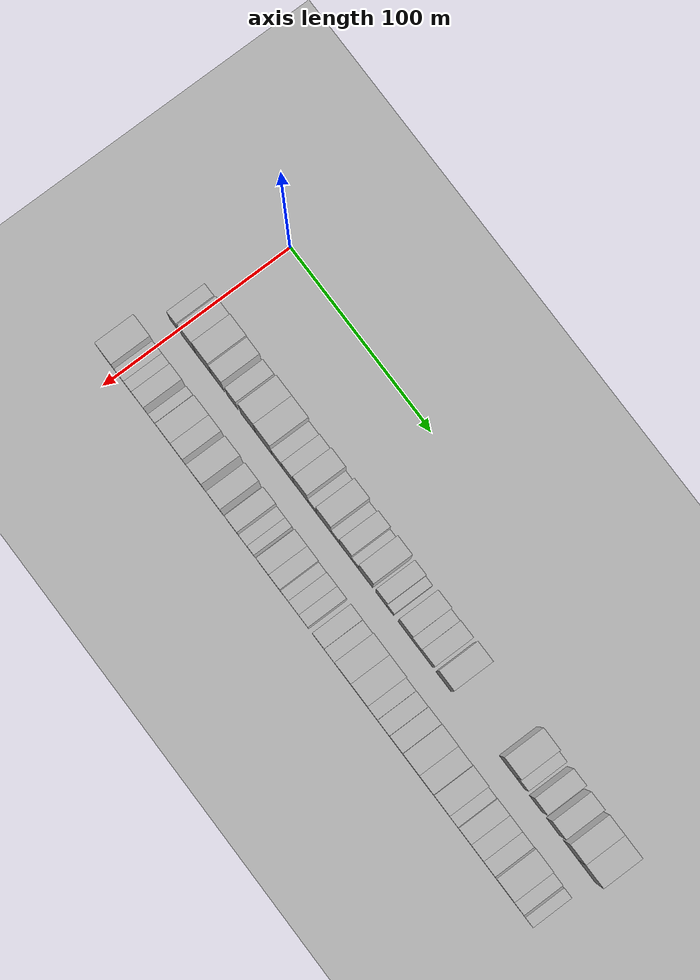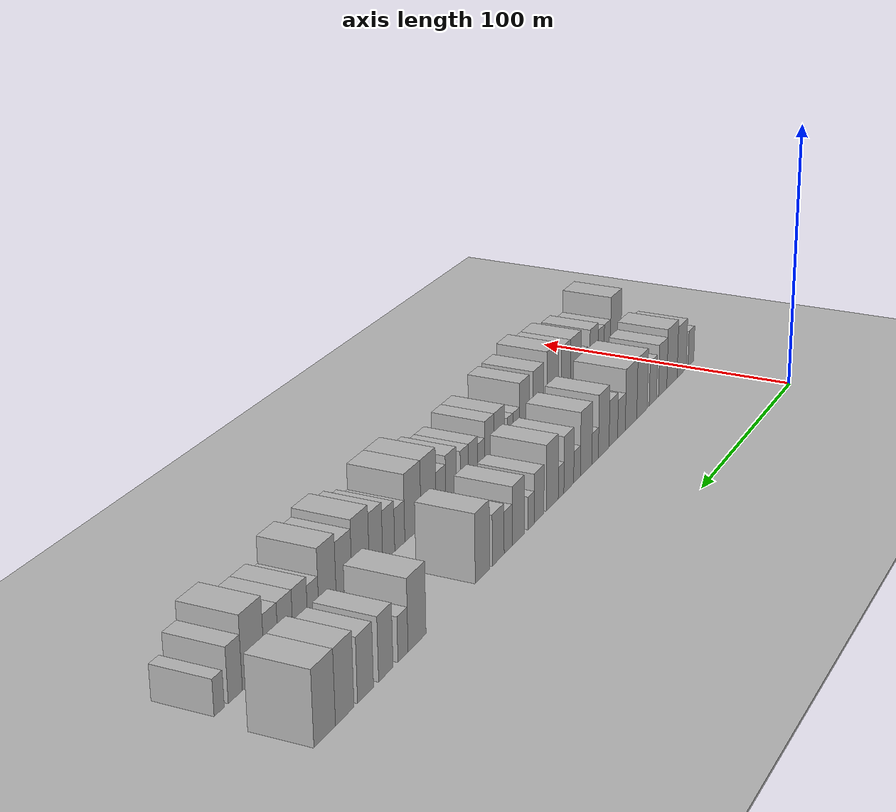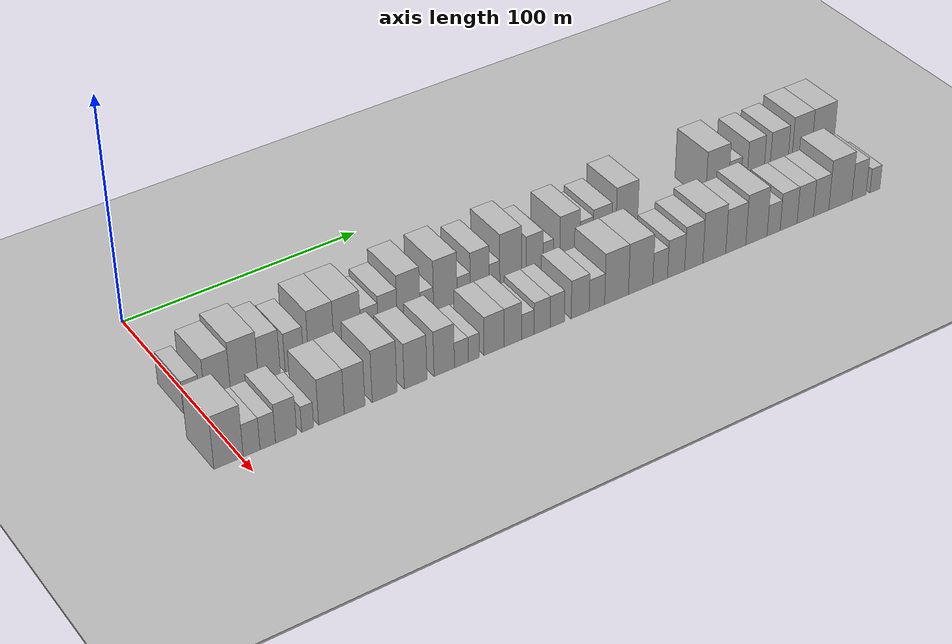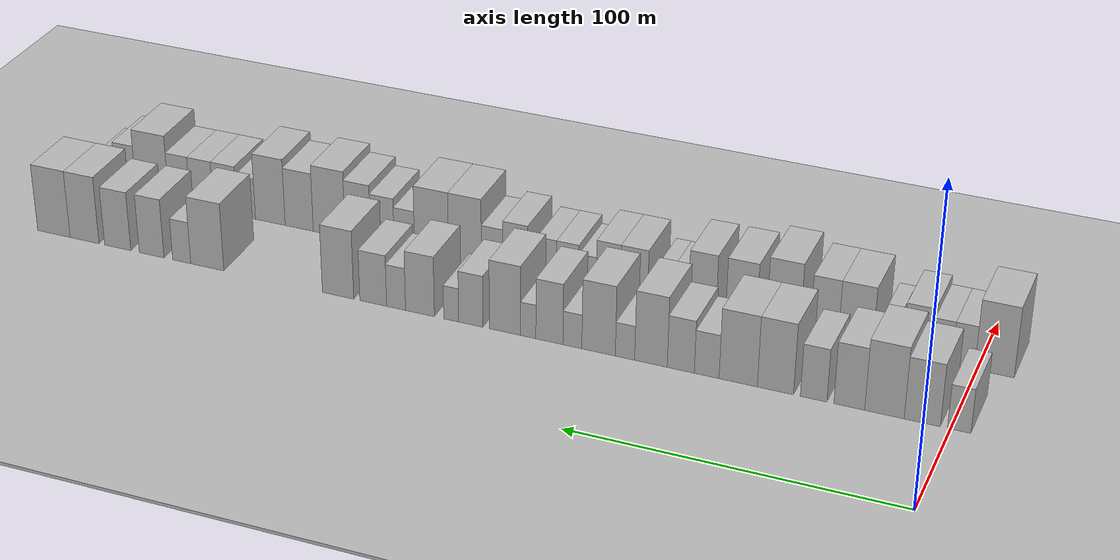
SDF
<sdf version="1.6">
 <world name="default">
  <include><name>ground_plane_1</name><uri>model://HANNAS_ground_plane</uri></include>
  <include>
   <name>ground_plane_2</name>
   <uri>model://HANNAS_ground_plane</uri>
   <pose>100 0 0  0 0 0</pose>
  </include>
  <model name="building_32">
   <static>1</static>
   <pose>50.0000 -2.4643 0 0.000000 0.000000 0.000000</pose>
   <link name="link">
    <pose>0 0 7.50 0 0 0</pose>
    <collision name="collision"><geometry><box><size>20.0000 6.6110 15.0000</size></box></geometry></collision>
    <visual name="visual">
     <cast_shadows>0</cast_shadows>
     <geometry><box><size>20.0000 6.6110 15.0000</size></box></geometry>
     <material>
      <script>
       <uri>model://HANNAS_wall/materials/scripts</uri>
       <uri>model://HANNAS_wall/materials/textures</uri>
       <name>vrc/HANNAS_wall</name>
      </script>
     </material>
    </visual>
   </link>
  </model>
  <model name="building_33">
   <static>1</static>
   <pose>50.0000 7.9757 0 0.000000 0.000000 0.000000</pose>
   <link name="link">
    <pose>0 0 10.50 0 0 0</pose>
    <collision name="collision"><geometry><box><size>20.0000 10.2690 21.0000</size></box></geometry></collision>
    <visual name="visual">
     <cast_shadows>0</cast_shadows>
     <geometry><box><size>20.0000 10.2690 21.0000</size></box></geometry>
     <material>
      <script>
       <uri>model://HANNAS_wall/materials/scripts</uri>
       <uri>model://HANNAS_wall/materials/textures</uri>
       <name>vrc/HANNAS_wall</name>
      </script>
     </material>
    </visual>
   </link>
  </model>
  <model name="building_34">
   <static>1</static>
   <pose>50.0000 18.7712 0 0.000000 0.000000 0.000000</pose>
   <link name="link">
    <pose>0 0 12.00 0 0 0</pose>
    <collision name="collision"><geometry><box><size>20.0000 11.3220 24.0000</size></box></geometry></collision>
    <visual name="visual">
     <cast_shadows>0</cast_shadows>
     <geometry><box><size>20.0000 11.3220 24.0000</size></box></geometry>
     <material>
      <script>
       <uri>model://HANNAS_wall/materials/scripts</uri>
       <uri>model://HANNAS_wall/materials/textures</uri>
       <name>vrc/HANNAS_wall</name>
      </script>
     </material>
    </visual>
   </link>
  </model>
  <model name="building_35">
   <static>1</static>
   <pose>50.0000 28.8956 0 0.000000 0.000000 0.000000</pose>
   <link name="link">
    <pose>0 0 10.50 0 0 0</pose>
    <collision name="collision"><geometry><box><size>20.0000 8.9268 21.0000</size></box></geometry></collision>
    <visual name="visual">
     <cast_shadows>0</cast_shadows>
     <geometry><box><size>20.0000 8.9268 21.0000</size></box></geometry>
     <material>
      <script>
       <uri>model://HANNAS_wall/materials/scripts</uri>
       <uri>model://HANNAS_wall/materials/textures</uri>
       <name>vrc/HANNAS_wall</name>
      </script>
     </material>
    </visual>
   </link>
  </model>
  <model name="building_36">
   <static>1</static>
   <pose>50.0000 39.2411 0 0.000000 0.000000 0.000000</pose>
   <link name="link">
    <pose>0 0 9.00 0 0 0</pose>
    <collision name="collision"><geometry><box><size>20.0000 7.7642 18.0000</size></box></geometry></collision>
    <visual name="visual">
     <cast_shadows>0</cast_shadows>
     <geometry><box><size>20.0000 7.7642 18.0000</size></box></geometry>
     <material>
      <script>
       <uri>model://HANNAS_wall/materials/scripts</uri>
       <uri>model://HANNAS_wall/materials/textures</uri>
       <name>vrc/HANNAS_wall</name>
      </script>
     </material>
    </visual>
   </link>
  </model>
  <model name="building_37">
   <static>1</static>
   <pose>50.0000 50.4694 0 0.000000 0.000000 0.000000</pose>
   <link name="link">
    <pose>0 0 12.00 0 0 0</pose>
    <collision name="collision"><geometry><box><size>20.0000 10.6924 24.0000</size></box></geometry></collision>
    <visual name="visual">
     <cast_shadows>0</cast_shadows>
     <geometry><box><size>20.0000 10.6924 24.0000</size></box></geometry>
     <material>
      <script>
       <uri>model://HANNAS_wall/materials/scripts</uri>
       <uri>model://HANNAS_wall/materials/textures</uri>
       <name>vrc/HANNAS_wall</name>
      </script>
     </material>
    </visual>
   </link>
  </model>
  <model name="building_38">
   <static>1</static>
   <pose>50.0000 61.5156 0 0.000000 0.000000 0.000000</pose>
   <link name="link">
    <pose>0 0 12.00 0 0 0</pose>
    <collision name="collision"><geometry><box><size>20.0000 11.3999 24.0000</size></box></geometry></collision>
    <visual name="visual">
     <cast_shadows>0</cast_shadows>
     <geometry><box><size>20.0000 11.3999 24.0000</size></box></geometry>
     <material>
      <script>
       <uri>model://HANNAS_wall/materials/scripts</uri>
       <uri>model://HANNAS_wall/materials/textures</uri>
       <name>vrc/HANNAS_wall</name>
      </script>
     </material>
    </visual>
   </link>
  </model>
  <model name="building_39">
   <static>1</static>
   <pose>50.0000 70.9410 0 0.000000 0.000000 0.000000</pose>
   <link name="link">
    <pose>0 0 7.50 0 0 0</pose>
    <collision name="collision"><geometry><box><size>20.0000 7.4509 15.0000</size></box></geometry></collision>
    <visual name="visual">
     <cast_shadows>0</cast_shadows>
     <geometry><box><size>20.0000 7.4509 15.0000</size></box></geometry>
     <material>
      <script>
       <uri>model://HANNAS_wall/materials/scripts</uri>
       <uri>model://HANNAS_wall/materials/textures</uri>
       <name>vrc/HANNAS_wall</name>
      </script>
     </material>
    </visual>
   </link>
  </model>
  <model name="building_40">
   <static>1</static>
   <pose>50.0000 78.7618 0 0.000000 0.000000 0.000000</pose>
   <link name="link">
    <pose>0 0 9.00 0 0 0</pose>
    <collision name="collision"><geometry><box><size>20.0000 8.1908 18.0000</size></box></geometry></collision>
    <visual name="visual">
     <cast_shadows>0</cast_shadows>
     <geometry><box><size>20.0000 8.1908 18.0000</size></box></geometry>
     <material>
      <script>
       <uri>model://HANNAS_wall/materials/scripts</uri>
       <uri>model://HANNAS_wall/materials/textures</uri>
       <name>vrc/HANNAS_wall</name>
      </script>
     </material>
    </visual>
   </link>
  </model>
  <model name="building_41">
   <static>1</static>
   <pose>50.0000 87.8269 0 0.000000 0.000000 0.000000</pose>
   <link name="link">
    <pose>0 0 12.00 0 0 0</pose>
    <collision name="collision"><geometry><box><size>20.0000 9.9394 24.0000</size></box></geometry></collision>
    <visual name="visual">
     <cast_shadows>0</cast_shadows>
     <geometry><box><size>20.0000 9.9394 24.0000</size></box></geometry>
     <material>
      <script>
       <uri>model://HANNAS_wall/materials/scripts</uri>
       <uri>model://HANNAS_wall/materials/textures</uri>
       <name>vrc/HANNAS_wall</name>
      </script>
     </material>
    </visual>
   </link>
  </model>
  <model name="building_42">
   <static>1</static>
   <pose>50.0000 95.7598 0 0.000000 0.000000 0.000000</pose>
   <link name="link">
    <pose>0 0 6.00 0 0 0</pose>
    <collision name="collision"><geometry><box><size>20.0000 5.9263 12.0000</size></box></geometry></collision>
    <visual name="visual">
     <cast_shadows>0</cast_shadows>
     <geometry><box><size>20.0000 5.9263 12.0000</size></box></geometry>
     <material>
      <script>
       <uri>model://HANNAS_wall/materials/scripts</uri>
       <uri>model://HANNAS_wall/materials/textures</uri>
       <name>vrc/HANNAS_wall</name>
      </script>
     </material>
    </visual>
   </link>
  </model>
  <model name="building_43">
   <static>1</static>
   <pose>50.0000 103.9115 0 0.000000 0.000000 0.000000</pose>
   <link name="link">
    <pose>0 0 12.00 0 0 0</pose>
    <collision name="collision"><geometry><box><size>20.0000 10.3771 24.0000</size></box></geometry></collision>
    <visual name="visual">
     <cast_shadows>0</cast_shadows>
     <geometry><box><size>20.0000 10.3771 24.0000</size></box></geometry>
     <material>
      <script>
       <uri>model://HANNAS_wall/materials/scripts</uri>
       <uri>model://HANNAS_wall/materials/textures</uri>
       <name>vrc/HANNAS_wall</name>
      </script>
     </material>
    </visual>
   </link>
  </model>
  <model name="building_44">
   <static>1</static>
   <pose>50.0000 112.0410 0 0.000000 0.000000 0.000000</pose>
   <link name="link">
    <pose>0 0 6.00 0 0 0</pose>
    <collision name="collision"><geometry><box><size>20.0000 5.8819 12.0000</size></box></geometry></collision>
    <visual name="visual">
     <cast_shadows>0</cast_shadows>
     <geometry><box><size>20.0000 5.8819 12.0000</size></box></geometry>
     <material>
      <script>
       <uri>model://HANNAS_wall/materials/scripts</uri>
       <uri>model://HANNAS_wall/materials/textures</uri>
       <name>vrc/HANNAS_wall</name>
      </script>
     </material>
    </visual>
   </link>
  </model>
  <model name="building_45">
   <static>1</static>
   <pose>50.0000 119.2341 0 0.000000 0.000000 0.000000</pose>
   <link name="link">
    <pose>0 0 10.50 0 0 0</pose>
    <collision name="collision"><geometry><box><size>20.0000 8.5043 21.0000</size></box></geometry></collision>
    <visual name="visual">
     <cast_shadows>0</cast_shadows>
     <geometry><box><size>20.0000 8.5043 21.0000</size></box></geometry>
     <material>
      <script>
       <uri>model://HANNAS_wall/materials/scripts</uri>
       <uri>model://HANNAS_wall/materials/textures</uri>
       <name>vrc/HANNAS_wall</name>
      </script>
     </material>
    </visual>
   </link>
  </model>
  <model name="building_46">
   <static>1</static>
   <pose>50.0000 125.8914 0 0.000000 0.000000 0.000000</pose>
   <link name="link">
    <pose>0 0 6.00 0 0 0</pose>
    <collision name="collision"><geometry><box><size>20.0000 4.8104 12.0000</size></box></geometry></collision>
    <visual name="visual">
     <cast_shadows>0</cast_shadows>
     <geometry><box><size>20.0000 4.8104 12.0000</size></box></geometry>
     <material>
      <script>
       <uri>model://HANNAS_wall/materials/scripts</uri>
       <uri>model://HANNAS_wall/materials/textures</uri>
       <name>vrc/HANNAS_wall</name>
      </script>
     </material>
    </visual>
   </link>
  </model>
  <model name="building_47">
   <static>1</static>
   <pose>50.0000 133.2575 0 0.000000 0.000000 0.000000</pose>
   <link name="link">
    <pose>0 0 12.00 0 0 0</pose>
    <collision name="collision"><geometry><box><size>20.0000 9.9218 24.0000</size></box></geometry></collision>
    <visual name="visual">
     <cast_shadows>0</cast_shadows>
     <geometry><box><size>20.0000 9.9218 24.0000</size></box></geometry>
     <material>
      <script>
       <uri>model://HANNAS_wall/materials/scripts</uri>
       <uri>model://HANNAS_wall/materials/textures</uri>
       <name>vrc/HANNAS_wall</name>
      </script>
     </material>
    </visual>
   </link>
  </model>
  <model name="building_48">
   <static>1</static>
   <pose>50.0000 144.1445 0 0.000000 0.000000 0.000000</pose>
   <link name="link">
    <pose>0 0 9.00 0 0 0</pose>
    <collision name="collision"><geometry><box><size>20.0000 7.8521 18.0000</size></box></geometry></collision>
    <visual name="visual">
     <cast_shadows>0</cast_shadows>
     <geometry><box><size>20.0000 7.8521 18.0000</size></box></geometry>
     <material>
      <script>
       <uri>model://HANNAS_wall/materials/scripts</uri>
       <uri>model://HANNAS_wall/materials/textures</uri>
       <name>vrc/HANNAS_wall</name>
      </script>
     </material>
    </visual>
   </link>
  </model>
  <model name="building_49">
   <static>1</static>
   <pose>50.0000 150.4758 0 0.000000 0.000000 0.000000</pose>
   <link name="link">
    <pose>0 0 6.00 0 0 0</pose>
    <collision name="collision"><geometry><box><size>20.0000 4.8105 12.0000</size></box></geometry></collision>
    <visual name="visual">
     <cast_shadows>0</cast_shadows>
     <geometry><box><size>20.0000 4.8105 12.0000</size></box></geometry>
     <material>
      <script>
       <uri>model://HANNAS_wall/materials/scripts</uri>
       <uri>model://HANNAS_wall/materials/textures</uri>
       <name>vrc/HANNAS_wall</name>
      </script>
     </material>
    </visual>
   </link>
  </model>
  <model name="building_50">
   <static>1</static>
   <pose>50.0000 160.5811 0 0.000000 0.000000 0.000000</pose>
   <link name="link">
    <pose>0 0 10.50 0 0 0</pose>
    <collision name="collision"><geometry><box><size>20.0000 9.4002 21.0000</size></box></geometry></collision>
    <visual name="visual">
     <cast_shadows>0</cast_shadows>
     <geometry><box><size>20.0000 9.4002 21.0000</size></box></geometry>
     <material>
      <script>
       <uri>model://HANNAS_wall/materials/scripts</uri>
       <uri>model://HANNAS_wall/materials/textures</uri>
       <name>vrc/HANNAS_wall</name>
      </script>
     </material>
    </visual>
   </link>
  </model>
  <model name="building_51">
   <static>1</static>
   <pose>50.0000 168.3770 0 0.000000 0.000000 0.000000</pose>
   <link name="link">
    <pose>0 0 7.50 0 0 0</pose>
    <collision name="collision"><geometry><box><size>20.0000 6.1916 15.0000</size></box></geometry></collision>
    <visual name="visual">
     <cast_shadows>0</cast_shadows>
     <geometry><box><size>20.0000 6.1916 15.0000</size></box></geometry>
     <material>
      <script>
       <uri>model://HANNAS_wall/materials/scripts</uri>
       <uri>model://HANNAS_wall/materials/textures</uri>
       <name>vrc/HANNAS_wall</name>
      </script>
     </material>
    </visual>
   </link>
  </model>
  <model name="building_52">
   <static>1</static>
   <pose>50.0000 175.8885 0 0.000000 0.000000 0.000000</pose>
   <link name="link">
    <pose>0 0 9.00 0 0 0</pose>
    <collision name="collision"><geometry><box><size>20.0000 8.8314 18.0000</size></box></geometry></collision>
    <visual name="visual">
     <cast_shadows>0</cast_shadows>
     <geometry><box><size>20.0000 8.8314 18.0000</size></box></geometry>
     <material>
      <script>
       <uri>model://HANNAS_wall/materials/scripts</uri>
       <uri>model://HANNAS_wall/materials/textures</uri>
       <name>vrc/HANNAS_wall</name>
      </script>
     </material>
    </visual>
   </link>
  </model>
  <model name="building_53">
   <static>1</static>
   <pose>50.0000 187.5169 0 0.000000 0.000000 0.000000</pose>
   <link name="link">
    <pose>0 0 12.00 0 0 0</pose>
    <collision name="collision"><geometry><box><size>20.0000 10.4254 24.0000</size></box></geometry></collision>
    <visual name="visual">
     <cast_shadows>0</cast_shadows>
     <geometry><box><size>20.0000 10.4254 24.0000</size></box></geometry>
     <material>
      <script>
       <uri>model://HANNAS_wall/materials/scripts</uri>
       <uri>model://HANNAS_wall/materials/textures</uri>
       <name>vrc/HANNAS_wall</name>
      </script>
     </material>
    </visual>
   </link>
  </model>
  <model name="building_54">
   <static>1</static>
   <pose>50.0000 231.8937 0 0.000000 0.000000 0.000000</pose>
   <link name="link">
    <pose>0 0 12.00 0 0 0</pose>
    <collision name="collision"><geometry><box><size>20.0000 11.4427 24.0000</size></box></geometry></collision>
    <visual name="visual">
     <cast_shadows>0</cast_shadows>
     <geometry><box><size>20.0000 11.4427 24.0000</size></box></geometry>
     <material>
      <script>
       <uri>model://HANNAS_wall/materials/scripts</uri>
       <uri>model://HANNAS_wall/materials/textures</uri>
       <name>vrc/HANNAS_wall</name>
      </script>
     </material>
    </visual>
   </link>
  </model>
  <model name="building_55">
   <static>1</static>
   <pose>50.0000 240.7712 0 0.000000 0.000000 0.000000</pose>
   <link name="link">
    <pose>0 0 7.50 0 0 0</pose>
    <collision name="collision"><geometry><box><size>20.0000 6.3123 15.0000</size></box></geometry></collision>
    <visual name="visual">
     <cast_shadows>0</cast_shadows>
     <geometry><box><size>20.0000 6.3123 15.0000</size></box></geometry>
     <material>
      <script>
       <uri>model://HANNAS_wall/materials/scripts</uri>
       <uri>model://HANNAS_wall/materials/textures</uri>
       <name>vrc/HANNAS_wall</name>
      </script>
     </material>
    </visual>
   </link>
  </model>
  <model name="building_56">
   <static>1</static>
   <pose>50.0000 251.2696 0 0.000000 0.000000 0.000000</pose>
   <link name="link">
    <pose>0 0 10.50 0 0 0</pose>
    <collision name="collision"><geometry><box><size>20.0000 8.6844 21.0000</size></box></geometry></collision>
    <visual name="visual">
     <cast_shadows>0</cast_shadows>
     <geometry><box><size>20.0000 8.6844 21.0000</size></box></geometry>
     <material>
      <script>
       <uri>model://HANNAS_wall/materials/scripts</uri>
       <uri>model://HANNAS_wall/materials/textures</uri>
       <name>vrc/HANNAS_wall</name>
      </script>
     </material>
    </visual>
   </link>
  </model>
  <model name="building_57">
   <static>1</static>
   <pose>50.0000 263.2645 0 0.000000 0.000000 0.000000</pose>
   <link name="link">
    <pose>0 0 10.50 0 0 0</pose>
    <collision name="collision"><geometry><box><size>20.0000 9.3053 21.0000</size></box></geometry></collision>
    <visual name="visual">
     <cast_shadows>0</cast_shadows>
     <geometry><box><size>20.0000 9.3053 21.0000</size></box></geometry>
     <material>
      <script>
       <uri>model://HANNAS_wall/materials/scripts</uri>
       <uri>model://HANNAS_wall/materials/textures</uri>
       <name>vrc/HANNAS_wall</name>
      </script>
     </material>
    </visual>
   </link>
  </model>
  <model name="building_58">
   <static>1</static>
   <pose>50.0000 275.0928 0 0.000000 0.000000 0.000000</pose>
   <link name="link">
    <pose>0 0 12.00 0 0 0</pose>
    <collision name="collision"><geometry><box><size>20.0000 10.3512 24.0000</size></box></geometry></collision>
    <visual name="visual">
     <cast_shadows>0</cast_shadows>
     <geometry><box><size>20.0000 10.3512 24.0000</size></box></geometry>
     <material>
      <script>
       <uri>model://HANNAS_wall/materials/scripts</uri>
       <uri>model://HANNAS_wall/materials/textures</uri>
       <name>vrc/HANNAS_wall</name>
      </script>
     </material>
    </visual>
   </link>
  </model>
  <model name="building_59">
   <static>1</static>
   <pose>50.0000 286.1208 0 0.000000 0.000000 0.000000</pose>
   <link name="link">
    <pose>0 0 12.00 0 0 0</pose>
    <collision name="collision"><geometry><box><size>20.0000 11.7048 24.0000</size></box></geometry></collision>
    <visual name="visual">
     <cast_shadows>0</cast_shadows>
     <geometry><box><size>20.0000 11.7048 24.0000</size></box></geometry>
     <material>
      <script>
       <uri>model://HANNAS_wall/materials/scripts</uri>
       <uri>model://HANNAS_wall/materials/textures</uri>
       <name>vrc/HANNAS_wall</name>
      </script>
     </material>
    </visual>
   </link>
  </model>
  <model name="building_91">
   <static>1</static>
   <pose>82.0000 -5.0672 0 0.000000 0.000000 0.000000</pose>
   <link name="link">
    <pose>0 0 12.00 0 0 0</pose>
    <collision name="collision"><geometry><box><size>20.0000 11.4733 24.0000</size></box></geometry></collision>
    <visual name="visual">
     <cast_shadows>0</cast_shadows>
     <geometry><box><size>20.0000 11.4733 24.0000</size></box></geometry>
     <material>
      <script>
       <uri>model://HANNAS_wall/materials/scripts</uri>
       <uri>model://HANNAS_wall/materials/textures</uri>
       <name>vrc/HANNAS_wall</name>
      </script>
     </material>
    </visual>
   </link>
  </model>
  <model name="building_92">
   <static>1</static>
   <pose>82.0000 3.9638 0 0.000000 0.000000 0.000000</pose>
   <link name="link">
    <pose>0 0 7.50 0 0 0</pose>
    <collision name="collision"><geometry><box><size>20.0000 6.5887 15.0000</size></box></geometry></collision>
    <visual name="visual">
     <cast_shadows>0</cast_shadows>
     <geometry><box><size>20.0000 6.5887 15.0000</size></box></geometry>
     <material>
      <script>
       <uri>model://HANNAS_wall/materials/scripts</uri>
       <uri>model://HANNAS_wall/materials/textures</uri>
       <name>vrc/HANNAS_wall</name>
      </script>
     </material>
    </visual>
   </link>
  </model>
  <model name="building_93">
   <static>1</static>
   <pose>82.0000 10.3303 0 0.000000 0.000000 0.000000</pose>
   <link name="link">
    <pose>0 0 7.50 0 0 0</pose>
    <collision name="collision"><geometry><box><size>20.0000 6.1444 15.0000</size></box></geometry></collision>
    <visual name="visual">
     <cast_shadows>0</cast_shadows>
     <geometry><box><size>20.0000 6.1444 15.0000</size></box></geometry>
     <material>
      <script>
       <uri>model://HANNAS_wall/materials/scripts</uri>
       <uri>model://HANNAS_wall/materials/textures</uri>
       <name>vrc/HANNAS_wall</name>
      </script>
     </material>
    </visual>
   </link>
  </model>
  <model name="building_94">
   <static>1</static>
   <pose>82.0000 17.6313 0 0.000000 0.000000 0.000000</pose>
   <link name="link">
    <pose>0 0 9.00 0 0 0</pose>
    <collision name="collision"><geometry><box><size>20.0000 8.4575 18.0000</size></box></geometry></collision>
    <visual name="visual">
     <cast_shadows>0</cast_shadows>
     <geometry><box><size>20.0000 8.4575 18.0000</size></box></geometry>
     <material>
      <script>
       <uri>model://HANNAS_wall/materials/scripts</uri>
       <uri>model://HANNAS_wall/materials/textures</uri>
       <name>vrc/HANNAS_wall</name>
      </script>
     </material>
    </visual>
   </link>
  </model>
  <model name="building_95">
   <static>1</static>
   <pose>82.0000 26.2788 0 0.000000 0.000000 0.000000</pose>
   <link name="link">
    <pose>0 0 6.00 0 0 0</pose>
    <collision name="collision"><geometry><box><size>20.0000 4.8377 12.0000</size></box></geometry></collision>
    <visual name="visual">
     <cast_shadows>0</cast_shadows>
     <geometry><box><size>20.0000 4.8377 12.0000</size></box></geometry>
     <material>
      <script>
       <uri>model://HANNAS_wall/materials/scripts</uri>
       <uri>model://HANNAS_wall/materials/textures</uri>
       <name>vrc/HANNAS_wall</name>
      </script>
     </material>
    </visual>
   </link>
  </model>
  <model name="building_96">
   <static>1</static>
   <pose>82.0000 35.9110 0 0.000000 0.000000 0.000000</pose>
   <link name="link">
    <pose>0 0 10.50 0 0 0</pose>
    <collision name="collision"><geometry><box><size>20.0000 10.4268 21.0000</size></box></geometry></collision>
    <visual name="visual">
     <cast_shadows>0</cast_shadows>
     <geometry><box><size>20.0000 10.4268 21.0000</size></box></geometry>
     <material>
      <script>
       <uri>model://HANNAS_wall/materials/scripts</uri>
       <uri>model://HANNAS_wall/materials/textures</uri>
       <name>vrc/HANNAS_wall</name>
      </script>
     </material>
    </visual>
   </link>
  </model>
  <model name="building_97">
   <static>1</static>
   <pose>82.0000 45.3883 0 0.000000 0.000000 0.000000</pose>
   <link name="link">
    <pose>0 0 10.50 0 0 0</pose>
    <collision name="collision"><geometry><box><size>20.0000 8.5277 21.0000</size></box></geometry></collision>
    <visual name="visual">
     <cast_shadows>0</cast_shadows>
     <geometry><box><size>20.0000 8.5277 21.0000</size></box></geometry>
     <material>
      <script>
       <uri>model://HANNAS_wall/materials/scripts</uri>
       <uri>model://HANNAS_wall/materials/textures</uri>
       <name>vrc/HANNAS_wall</name>
      </script>
     </material>
    </visual>
   </link>
  </model>
  <model name="building_98">
   <static>1</static>
   <pose>82.0000 57.8281 0 0.000000 0.000000 0.000000</pose>
   <link name="link">
    <pose>0 0 12.00 0 0 0</pose>
    <collision name="collision"><geometry><box><size>20.0000 10.3519 24.0000</size></box></geometry></collision>
    <visual name="visual">
     <cast_shadows>0</cast_shadows>
     <geometry><box><size>20.0000 10.3519 24.0000</size></box></geometry>
     <material>
      <script>
       <uri>model://HANNAS_wall/materials/scripts</uri>
       <uri>model://HANNAS_wall/materials/textures</uri>
       <name>vrc/HANNAS_wall</name>
      </script>
     </material>
    </visual>
   </link>
  </model>
  <model name="building_99">
   <static>1</static>
   <pose>82.0000 70.8132 0 0.000000 0.000000 0.000000</pose>
   <link name="link">
    <pose>0 0 10.50 0 0 0</pose>
    <collision name="collision"><geometry><box><size>20.0000 9.6183 21.0000</size></box></geometry></collision>
    <visual name="visual">
     <cast_shadows>0</cast_shadows>
     <geometry><box><size>20.0000 9.6183 21.0000</size></box></geometry>
     <material>
      <script>
       <uri>model://HANNAS_wall/materials/scripts</uri>
       <uri>model://HANNAS_wall/materials/textures</uri>
       <name>vrc/HANNAS_wall</name>
      </script>
     </material>
    </visual>
   </link>
  </model>
  <model name="building_100">
   <static>1</static>
   <pose>82.0000 82.9843 0 0.000000 0.000000 0.000000</pose>
   <link name="link">
    <pose>0 0 10.50 0 0 0</pose>
    <collision name="collision"><geometry><box><size>20.0000 8.7239 21.0000</size></box></geometry></collision>
    <visual name="visual">
     <cast_shadows>0</cast_shadows>
     <geometry><box><size>20.0000 8.7239 21.0000</size></box></geometry>
     <material>
      <script>
       <uri>model://HANNAS_wall/materials/scripts</uri>
       <uri>model://HANNAS_wall/materials/textures</uri>
       <name>vrc/HANNAS_wall</name>
      </script>
     </material>
    </visual>
   </link>
  </model>
  <model name="building_101">
   <static>1</static>
   <pose>82.0000 90.3306 0 0.000000 0.000000 0.000000</pose>
   <link name="link">
    <pose>0 0 6.00 0 0 0</pose>
    <collision name="collision"><geometry><box><size>20.0000 5.9687 12.0000</size></box></geometry></collision>
    <visual name="visual">
     <cast_shadows>0</cast_shadows>
     <geometry><box><size>20.0000 5.9687 12.0000</size></box></geometry>
     <material>
      <script>
       <uri>model://HANNAS_wall/materials/scripts</uri>
       <uri>model://HANNAS_wall/materials/textures</uri>
       <name>vrc/HANNAS_wall</name>
      </script>
     </material>
    </visual>
   </link>
  </model>
  <model name="building_102">
   <static>1</static>
   <pose>82.0000 95.7303 0 0.000000 0.000000 0.000000</pose>
   <link name="link">
    <pose>0 0 6.00 0 0 0</pose>
    <collision name="collision"><geometry><box><size>20.0000 4.8308 12.0000</size></box></geometry></collision>
    <visual name="visual">
     <cast_shadows>0</cast_shadows>
     <geometry><box><size>20.0000 4.8308 12.0000</size></box></geometry>
     <material>
      <script>
       <uri>model://HANNAS_wall/materials/scripts</uri>
       <uri>model://HANNAS_wall/materials/textures</uri>
       <name>vrc/HANNAS_wall</name>
      </script>
     </material>
    </visual>
   </link>
  </model>
  <model name="building_103">
   <static>1</static>
   <pose>82.0000 104.5141 0 0.000000 0.000000 0.000000</pose>
   <link name="link">
    <pose>0 0 9.00 0 0 0</pose>
    <collision name="collision"><geometry><box><size>20.0000 8.7368 18.0000</size></box></geometry></collision>
    <visual name="visual">
     <cast_shadows>0</cast_shadows>
     <geometry><box><size>20.0000 8.7368 18.0000</size></box></geometry>
     <material>
      <script>
       <uri>model://HANNAS_wall/materials/scripts</uri>
       <uri>model://HANNAS_wall/materials/textures</uri>
       <name>vrc/HANNAS_wall</name>
      </script>
     </material>
    </visual>
   </link>
  </model>
  <model name="building_104">
   <static>1</static>
   <pose>82.0000 112.7400 0 0.000000 0.000000 0.000000</pose>
   <link name="link">
    <pose>0 0 9.00 0 0 0</pose>
    <collision name="collision"><geometry><box><size>20.0000 7.7150 18.0000</size></box></geometry></collision>
    <visual name="visual">
     <cast_shadows>0</cast_shadows>
     <geometry><box><size>20.0000 7.7150 18.0000</size></box></geometry>
     <material>
      <script>
       <uri>model://HANNAS_wall/materials/scripts</uri>
       <uri>model://HANNAS_wall/materials/textures</uri>
       <name>vrc/HANNAS_wall</name>
      </script>
     </material>
    </visual>
   </link>
  </model>
  <model name="building_105">
   <static>1</static>
   <pose>82.0000 119.4201 0 0.000000 0.000000 0.000000</pose>
   <link name="link">
    <pose>0 0 6.00 0 0 0</pose>
    <collision name="collision"><geometry><box><size>20.0000 5.6452 12.0000</size></box></geometry></collision>
    <visual name="visual">
     <cast_shadows>0</cast_shadows>
     <geometry><box><size>20.0000 5.6452 12.0000</size></box></geometry>
     <material>
      <script>
       <uri>model://HANNAS_wall/materials/scripts</uri>
       <uri>model://HANNAS_wall/materials/textures</uri>
       <name>vrc/HANNAS_wall</name>
      </script>
     </material>
    </visual>
   </link>
  </model>
  <model name="building_106">
   <static>1</static>
   <pose>82.0000 125.8480 0 0.000000 0.000000 0.000000</pose>
   <link name="link">
    <pose>0 0 7.50 0 0 0</pose>
    <collision name="collision"><geometry><box><size>20.0000 7.2107 15.0000</size></box></geometry></collision>
    <visual name="visual">
     <cast_shadows>0</cast_shadows>
     <geometry><box><size>20.0000 7.2107 15.0000</size></box></geometry>
     <material>
      <script>
       <uri>model://HANNAS_wall/materials/scripts</uri>
       <uri>model://HANNAS_wall/materials/textures</uri>
       <name>vrc/HANNAS_wall</name>
      </script>
     </material>
    </visual>
   </link>
  </model>
  <model name="building_107">
   <static>1</static>
   <pose>82.0000 132.6490 0 0.000000 0.000000 0.000000</pose>
   <link name="link">
    <pose>0 0 7.50 0 0 0</pose>
    <collision name="collision"><geometry><box><size>20.0000 6.3912 15.0000</size></box></geometry></collision>
    <visual name="visual">
     <cast_shadows>0</cast_shadows>
     <geometry><box><size>20.0000 6.3912 15.0000</size></box></geometry>
     <material>
      <script>
       <uri>model://HANNAS_wall/materials/scripts</uri>
       <uri>model://HANNAS_wall/materials/textures</uri>
       <name>vrc/HANNAS_wall</name>
      </script>
     </material>
    </visual>
   </link>
  </model>
  <model name="building_108">
   <static>1</static>
   <pose>82.0000 142.9310 0 0.000000 0.000000 0.000000</pose>
   <link name="link">
    <pose>0 0 9.00 0 0 0</pose>
    <collision name="collision"><geometry><box><size>20.0000 8.1728 18.0000</size></box></geometry></collision>
    <visual name="visual">
     <cast_shadows>0</cast_shadows>
     <geometry><box><size>20.0000 8.1728 18.0000</size></box></geometry>
     <material>
      <script>
       <uri>model://HANNAS_wall/materials/scripts</uri>
       <uri>model://HANNAS_wall/materials/textures</uri>
       <name>vrc/HANNAS_wall</name>
      </script>
     </material>
    </visual>
   </link>
  </model>
  <model name="building_109">
   <static>1</static>
   <pose>82.0000 150.5743 0 0.000000 0.000000 0.000000</pose>
   <link name="link">
    <pose>0 0 7.50 0 0 0</pose>
    <collision name="collision"><geometry><box><size>20.0000 7.1139 15.0000</size></box></geometry></collision>
    <visual name="visual">
     <cast_shadows>0</cast_shadows>
     <geometry><box><size>20.0000 7.1139 15.0000</size></box></geometry>
     <material>
      <script>
       <uri>model://HANNAS_wall/materials/scripts</uri>
       <uri>model://HANNAS_wall/materials/textures</uri>
       <name>vrc/HANNAS_wall</name>
      </script>
     </material>
    </visual>
   </link>
  </model>
  <model name="building_110">
   <static>1</static>
   <pose>82.0000 159.6352 0 0.000000 0.000000 0.000000</pose>
   <link name="link">
    <pose>0 0 12.00 0 0 0</pose>
    <collision name="collision"><geometry><box><size>20.0000 11.0079 24.0000</size></box></geometry></collision>
    <visual name="visual">
     <cast_shadows>0</cast_shadows>
     <geometry><box><size>20.0000 11.0079 24.0000</size></box></geometry>
     <material>
      <script>
       <uri>model://HANNAS_wall/materials/scripts</uri>
       <uri>model://HANNAS_wall/materials/textures</uri>
       <name>vrc/HANNAS_wall</name>
      </script>
     </material>
    </visual>
   </link>
  </model>
  <model name="building_111">
   <static>1</static>
   <pose>82.0000 170.8534 0 0.000000 0.000000 0.000000</pose>
   <link name="link">
    <pose>0 0 12.00 0 0 0</pose>
    <collision name="collision"><geometry><box><size>20.0000 11.4285 24.0000</size></box></geometry></collision>
    <visual name="visual">
     <cast_shadows>0</cast_shadows>
     <geometry><box><size>20.0000 11.4285 24.0000</size></box></geometry>
     <material>
      <script>
       <uri>model://HANNAS_wall/materials/scripts</uri>
       <uri>model://HANNAS_wall/materials/textures</uri>
       <name>vrc/HANNAS_wall</name>
      </script>
     </material>
    </visual>
   </link>
  </model>
  <model name="building_112">
   <static>1</static>
   <pose>82.0000 180.0335 0 0.000000 0.000000 0.000000</pose>
   <link name="link">
    <pose>0 0 7.50 0 0 0</pose>
    <collision name="collision"><geometry><box><size>20.0000 6.9316 15.0000</size></box></geometry></collision>
    <visual name="visual">
     <cast_shadows>0</cast_shadows>
     <geometry><box><size>20.0000 6.9316 15.0000</size></box></geometry>
     <material>
      <script>
       <uri>model://HANNAS_wall/materials/scripts</uri>
       <uri>model://HANNAS_wall/materials/textures</uri>
       <name>vrc/HANNAS_wall</name>
      </script>
     </material>
    </visual>
   </link>
  </model>
  <model name="building_113">
   <static>1</static>
   <pose>82.0000 187.5408 0 0.000000 0.000000 0.000000</pose>
   <link name="link">
    <pose>0 0 9.00 0 0 0</pose>
    <collision name="collision"><geometry><box><size>20.0000 8.0830 18.0000</size></box></geometry></collision>
    <visual name="visual">
     <cast_shadows>0</cast_shadows>
     <geometry><box><size>20.0000 8.0830 18.0000</size></box></geometry>
     <material>
      <script>
       <uri>model://HANNAS_wall/materials/scripts</uri>
       <uri>model://HANNAS_wall/materials/textures</uri>
       <name>vrc/HANNAS_wall</name>
      </script>
     </material>
    </visual>
   </link>
  </model>
  <model name="building_114">
   <static>1</static>
   <pose>82.0000 195.9626 0 0.000000 0.000000 0.000000</pose>
   <link name="link">
    <pose>0 0 10.50 0 0 0</pose>
    <collision name="collision"><geometry><box><size>20.0000 8.7607 21.0000</size></box></geometry></collision>
    <visual name="visual">
     <cast_shadows>0</cast_shadows>
     <geometry><box><size>20.0000 8.7607 21.0000</size></box></geometry>
     <material>
      <script>
       <uri>model://HANNAS_wall/materials/scripts</uri>
       <uri>model://HANNAS_wall/materials/textures</uri>
       <name>vrc/HANNAS_wall</name>
      </script>
     </material>
    </visual>
   </link>
  </model>
  <model name="building_115">
   <static>1</static>
   <pose>82.0000 205.8713 0 0.000000 0.000000 0.000000</pose>
   <link name="link">
    <pose>0 0 12.00 0 0 0</pose>
    <collision name="collision"><geometry><box><size>20.0000 11.0567 24.0000</size></box></geometry></collision>
    <visual name="visual">
     <cast_shadows>0</cast_shadows>
     <geometry><box><size>20.0000 11.0567 24.0000</size></box></geometry>
     <material>
      <script>
       <uri>model://HANNAS_wall/materials/scripts</uri>
       <uri>model://HANNAS_wall/materials/textures</uri>
       <name>vrc/HANNAS_wall</name>
      </script>
     </material>
    </visual>
   </link>
  </model>
  <model name="building_116">
   <static>1</static>
   <pose>82.0000 216.3184 0 0.000000 0.000000 0.000000</pose>
   <link name="link">
    <pose>0 0 10.50 0 0 0</pose>
    <collision name="collision"><geometry><box><size>20.0000 9.8375 21.0000</size></box></geometry></collision>
    <visual name="visual">
     <cast_shadows>0</cast_shadows>
     <geometry><box><size>20.0000 9.8375 21.0000</size></box></geometry>
     <material>
      <script>
       <uri>model://HANNAS_wall/materials/scripts</uri>
       <uri>model://HANNAS_wall/materials/textures</uri>
       <name>vrc/HANNAS_wall</name>
      </script>
     </material>
    </visual>
   </link>
  </model>
  <model name="building_117">
   <static>1</static>
   <pose>82.0000 226.4881 0 0.000000 0.000000 0.000000</pose>
   <link name="link">
    <pose>0 0 12.00 0 0 0</pose>
    <collision name="collision"><geometry><box><size>20.0000 10.5019 24.0000</size></box></geometry></collision>
    <visual name="visual">
     <cast_shadows>0</cast_shadows>
     <geometry><box><size>20.0000 10.5019 24.0000</size></box></geometry>
     <material>
      <script>
       <uri>model://HANNAS_wall/materials/scripts</uri>
       <uri>model://HANNAS_wall/materials/textures</uri>
       <name>vrc/HANNAS_wall</name>
      </script>
     </material>
    </visual>
   </link>
  </model>
  <model name="building_118">
   <static>1</static>
   <pose>82.0000 235.0153 0 0.000000 0.000000 0.000000</pose>
   <link name="link">
    <pose>0 0 7.50 0 0 0</pose>
    <collision name="collision"><geometry><box><size>20.0000 6.5526 15.0000</size></box></geometry></collision>
    <visual name="visual">
     <cast_shadows>0</cast_shadows>
     <geometry><box><size>20.0000 6.5526 15.0000</size></box></geometry>
     <material>
      <script>
       <uri>model://HANNAS_wall/materials/scripts</uri>
       <uri>model://HANNAS_wall/materials/textures</uri>
       <name>vrc/HANNAS_wall</name>
      </script>
     </material>
    </visual>
   </link>
  </model>
  <model name="building_119">
   <static>1</static>
   <pose>82.0000 242.5229 0 0.000000 0.000000 0.000000</pose>
   <link name="link">
    <pose>0 0 9.00 0 0 0</pose>
    <collision name="collision"><geometry><box><size>20.0000 8.4626 18.0000</size></box></geometry></collision>
    <visual name="visual">
     <cast_shadows>0</cast_shadows>
     <geometry><box><size>20.0000 8.4626 18.0000</size></box></geometry>
     <material>
      <script>
       <uri>model://HANNAS_wall/materials/scripts</uri>
       <uri>model://HANNAS_wall/materials/textures</uri>
       <name>vrc/HANNAS_wall</name>
      </script>
     </material>
    </visual>
   </link>
  </model>
  <model name="building_120">
   <static>1</static>
   <pose>82.0000 250.9289 0 0.000000 0.000000 0.000000</pose>
   <link name="link">
    <pose>0 0 9.00 0 0 0</pose>
    <collision name="collision"><geometry><box><size>20.0000 8.3493 18.0000</size></box></geometry></collision>
    <visual name="visual">
     <cast_shadows>0</cast_shadows>
     <geometry><box><size>20.0000 8.3493 18.0000</size></box></geometry>
     <material>
      <script>
       <uri>model://HANNAS_wall/materials/scripts</uri>
       <uri>model://HANNAS_wall/materials/textures</uri>
       <name>vrc/HANNAS_wall</name>
      </script>
     </material>
    </visual>
   </link>
  </model>
  <model name="building_121">
   <static>1</static>
   <pose>82.0000 258.9809 0 0.000000 0.000000 0.000000</pose>
   <link name="link">
    <pose>0 0 9.00 0 0 0</pose>
    <collision name="collision"><geometry><box><size>20.0000 7.7549 18.0000</size></box></geometry></collision>
    <visual name="visual">
     <cast_shadows>0</cast_shadows>
     <geometry><box><size>20.0000 7.7549 18.0000</size></box></geometry>
     <material>
      <script>
       <uri>model://HANNAS_wall/materials/scripts</uri>
       <uri>model://HANNAS_wall/materials/textures</uri>
       <name>vrc/HANNAS_wall</name>
      </script>
     </material>
    </visual>
   </link>
  </model>
  <model name="building_122">
   <static>1</static>
   <pose>82.0000 268.7863 0 0.000000 0.000000 0.000000</pose>
   <link name="link">
    <pose>0 0 12.00 0 0 0</pose>
    <collision name="collision"><geometry><box><size>20.0000 11.8558 24.0000</size></box></geometry></collision>
    <visual name="visual">
     <cast_shadows>0</cast_shadows>
     <geometry><box><size>20.0000 11.8558 24.0000</size></box></geometry>
     <material>
      <script>
       <uri>model://HANNAS_wall/materials/scripts</uri>
       <uri>model://HANNAS_wall/materials/textures</uri>
       <name>vrc/HANNAS_wall</name>
      </script>
     </material>
    </visual>
   </link>
  </model>
  <model name="building_123">
   <static>1</static>
   <pose>82.0000 278.4121 0 0.000000 0.000000 0.000000</pose>
   <link name="link">
    <pose>0 0 9.00 0 0 0</pose>
    <collision name="collision"><geometry><box><size>20.0000 7.3957 18.0000</size></box></geometry></collision>
    <visual name="visual">
     <cast_shadows>0</cast_shadows>
     <geometry><box><size>20.0000 7.3957 18.0000</size></box></geometry>
     <material>
      <script>
       <uri>model://HANNAS_wall/materials/scripts</uri>
       <uri>model://HANNAS_wall/materials/textures</uri>
       <name>vrc/HANNAS_wall</name>
      </script>
     </material>
    </visual>
   </link>
  </model>
  <model name="building_124">
   <static>1</static>
   <pose>82.0000 286.7031 0 0.000000 0.000000 0.000000</pose>
   <link name="link">
    <pose>0 0 6.00 0 0 0</pose>
    <collision name="collision"><geometry><box><size>20.0000 5.1863 12.0000</size></box></geometry></collision>
    <visual name="visual">
     <cast_shadows>0</cast_shadows>
     <geometry><box><size>20.0000 5.1863 12.0000</size></box></geometry>
     <material>
      <script>
       <uri>model://HANNAS_wall/materials/scripts</uri>
       <uri>model://HANNAS_wall/materials/textures</uri>
       <name>vrc/HANNAS_wall</name>
      </script>
     </material>
    </visual>
   </link>
  </model>
 </world>
</sdf>
